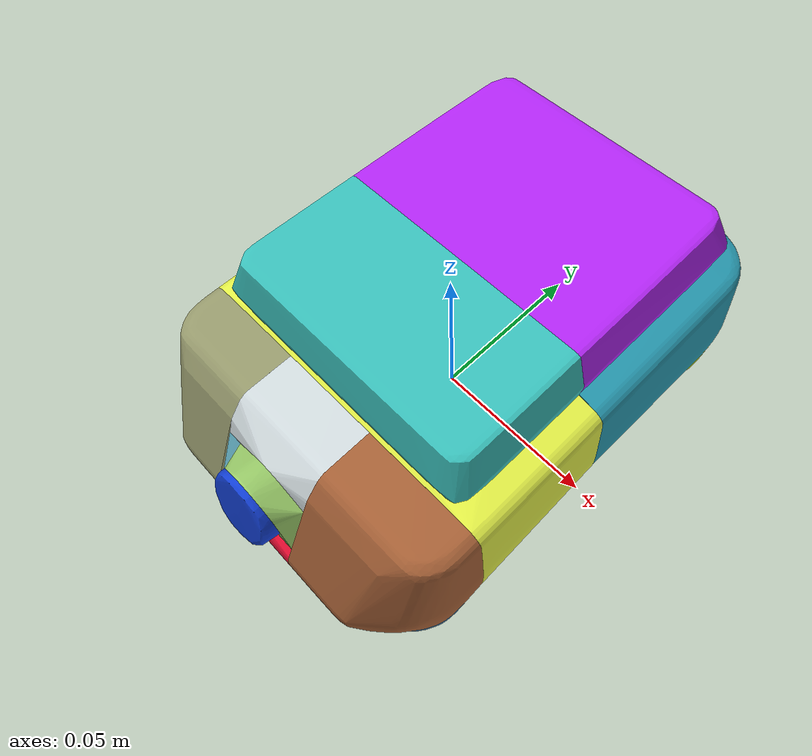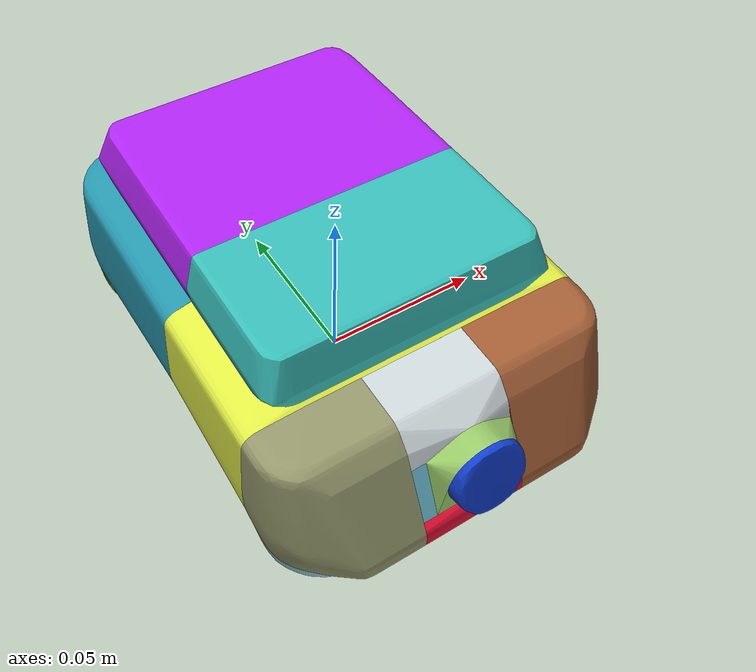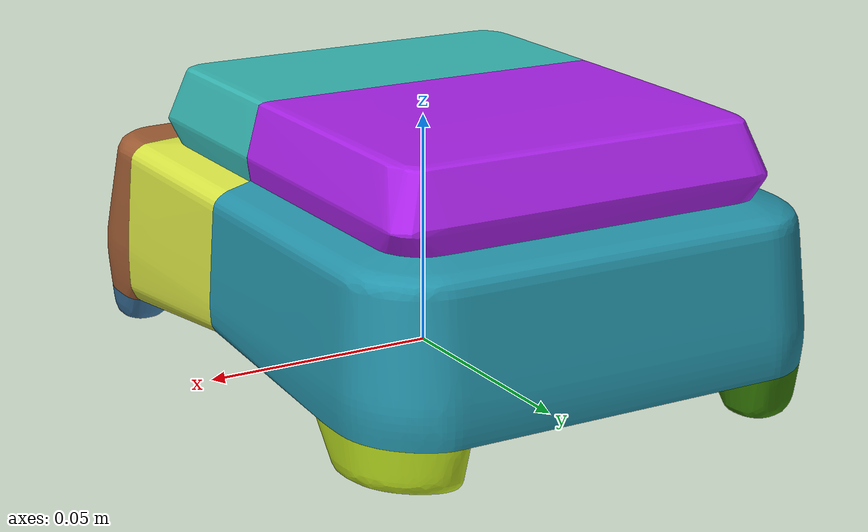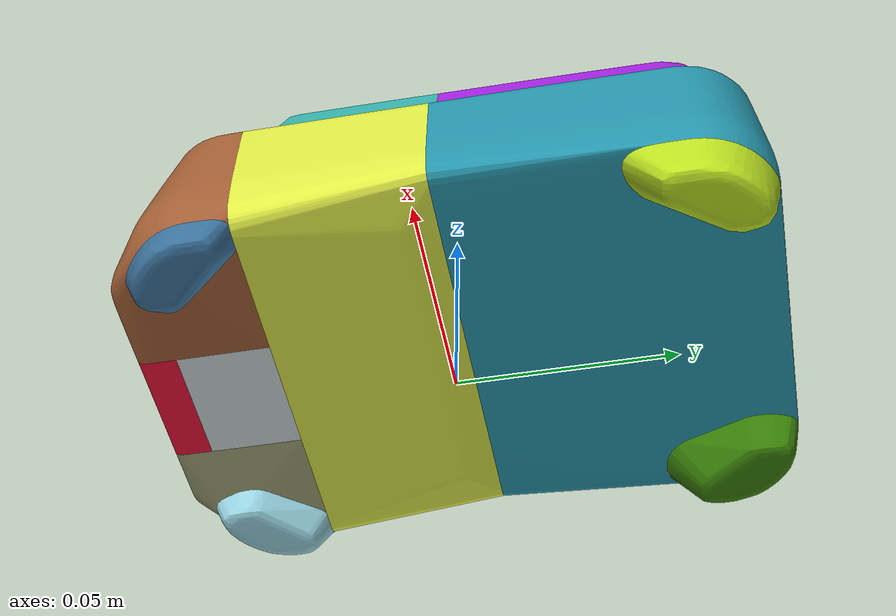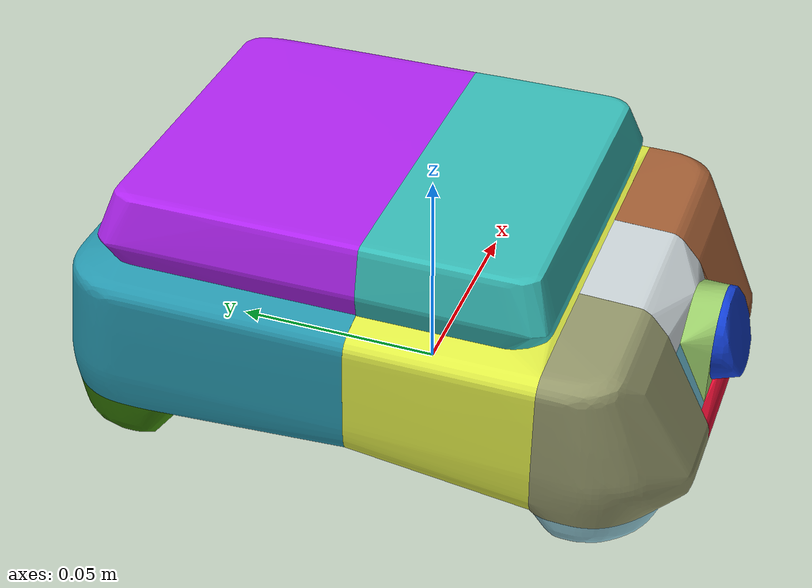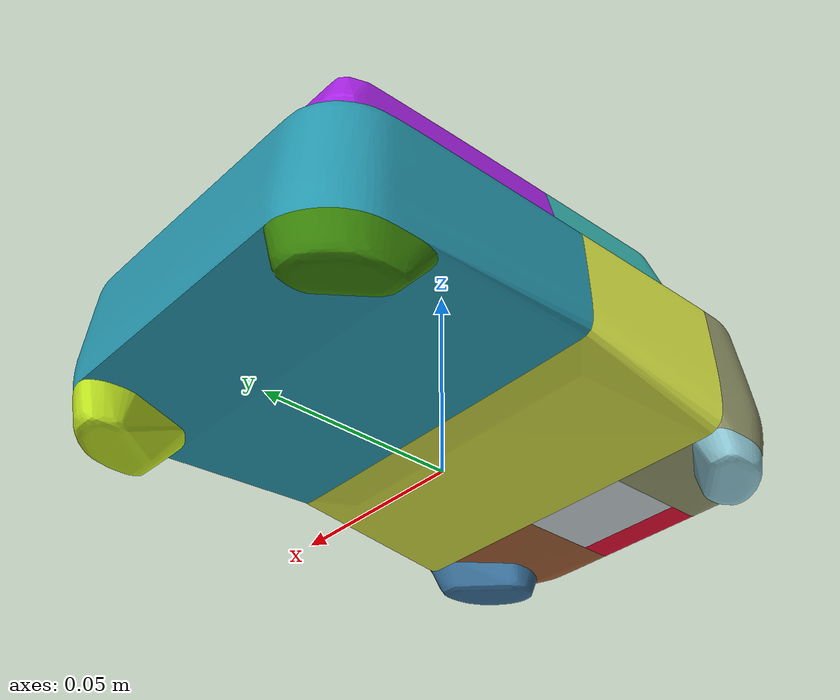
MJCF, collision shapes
<?xml version="1.0" ?>
<mujoco model="hot_plate">
  <asset>
    <texture type="2d" name="material_0" file="material_0.png"/>
    <material name="material_0" texture="material_0" specular="0.4000000000000001" shininess="0.001"/>
    <mesh file="hot_plate.obj" scale="0.07495989570619821 0.07495989570619821 0.07495989570619821"/>
    <mesh file="hot_plate/hot_plate_collision_0.obj" scale="0.07495989570619821 0.07495989570619821 0.07495989570619821"/>
    <mesh file="hot_plate/hot_plate_collision_1.obj" scale="0.07495989570619821 0.07495989570619821 0.07495989570619821"/>
    <mesh file="hot_plate/hot_plate_collision_2.obj" scale="0.07495989570619821 0.07495989570619821 0.07495989570619821"/>
    <mesh file="hot_plate/hot_plate_collision_3.obj" scale="0.07495989570619821 0.07495989570619821 0.07495989570619821"/>
    <mesh file="hot_plate/hot_plate_collision_4.obj" scale="0.07495989570619821 0.07495989570619821 0.07495989570619821"/>
    <mesh file="hot_plate/hot_plate_collision_5.obj" scale="0.07495989570619821 0.07495989570619821 0.07495989570619821"/>
    <mesh file="hot_plate/hot_plate_collision_6.obj" scale="0.07495989570619821 0.07495989570619821 0.07495989570619821"/>
    <mesh file="hot_plate/hot_plate_collision_7.obj" scale="0.07495989570619821 0.07495989570619821 0.07495989570619821"/>
    <mesh file="hot_plate/hot_plate_collision_8.obj" scale="0.07495989570619821 0.07495989570619821 0.07495989570619821"/>
    <mesh file="hot_plate/hot_plate_collision_9.obj" scale="0.07495989570619821 0.07495989570619821 0.07495989570619821"/>
    <mesh file="hot_plate/hot_plate_collision_10.obj" scale="0.07495989570619821 0.07495989570619821 0.07495989570619821"/>
    <mesh file="hot_plate/hot_plate_collision_11.obj" scale="0.07495989570619821 0.07495989570619821 0.07495989570619821"/>
    <mesh file="hot_plate/hot_plate_collision_12.obj" scale="0.07495989570619821 0.07495989570619821 0.07495989570619821"/>
    <mesh file="hot_plate/hot_plate_collision_13.obj" scale="0.07495989570619821 0.07495989570619821 0.07495989570619821"/>
    <mesh file="hot_plate/hot_plate_collision_14.obj" scale="0.07495989570619821 0.07495989570619821 0.07495989570619821"/>
  </asset>
  <worldbody>
    <body name="hot_plate">
      <inertial pos="0 0 0.028540" mass="0.02" diaginertia="0.0008 0.0008 0.0005"/>
      <geom material="material_0" mesh="hot_plate" class="visual"/>
      <geom mesh="hot_plate_collision_0" rgba="0.7326648351974515 0.875008323172983 0.12409686965649858 1" class="collision"/>
      <geom mesh="hot_plate_collision_1" rgba="0.21545815673018243 0.49227435206574854 0.02857385960172132 1" class="collision"/>
      <geom mesh="hot_plate_collision_2" rgba="0.21609861523375506 0.7337732363793704 0.7144462469761413 1" class="collision"/>
      <geom mesh="hot_plate_collision_3" rgba="0.6841081810181296 0.138369582915285 0.934049891721958 1" class="collision"/>
      <geom mesh="hot_plate_collision_4" rgba="0.8735717388005803 0.923044437508811 0.27138588104114136 1" class="collision"/>
      <geom mesh="hot_plate_collision_5" rgba="0.14621783521476828 0.5863522012418483 0.673274901195012 1" class="collision"/>
      <geom mesh="hot_plate_collision_6" rgba="0.5859761357455162 0.8175023512785704 0.8685093199426276 1" class="collision"/>
      <geom mesh="hot_plate_collision_7" rgba="0.5790360521442256 0.5920635601870291 0.4174130055726615 1" class="collision"/>
      <geom mesh="hot_plate_collision_8" rgba="0.22370095132653078 0.43897222277406767 0.6034862216924916 1" class="collision"/>
      <geom mesh="hot_plate_collision_9" rgba="0.8005043192322726 0.8367858704213763 0.8489400538386087 1" class="collision"/>
      <geom mesh="hot_plate_collision_10" rgba="0.6397127685939547 0.37180052148955667 0.20820387180803068 1" class="collision"/>
      <geom mesh="hot_plate_collision_11" rgba="0.9182886271625871 0.052001143802342664 0.2047889223361885 1" class="collision"/>
      <geom mesh="hot_plate_collision_12" rgba="0.4347026090889089 0.768474181223114 0.8557841213165294 1" class="collision"/>
      <geom mesh="hot_plate_collision_13" rgba="0.5980324100076143 0.7928350019659949 0.4072700126701717 1" class="collision"/>
      <geom mesh="hot_plate_collision_14" rgba="0.0679149413885658 0.2460461759273742 0.828784456913468 1" class="collision"/>
      <site class="grasppoint" pos="0.0000 0.0000 0.0342"/>
      <site class="grasppoint" pos="0.0000 0.0000 0.0457"/>
      <site class="grasppoint" pos="0.0000 0.0000 0.0542"/>
          <site class="keypoint" pos="-0.6737 -1.0001 0.0000"/>
      <site class="keypoint" pos="0.6727 1.0010 0.0000"/>
      <site class="keypoint" pos="-0.6737 1.0010 0.0000"/>
      <site class="keypoint" pos="0.6727 -1.0001 0.0000"/>
      <site class="placepoint" pos="-0.0005 0.0005 0.1005"/>
    <site name="top_site" pos="0 0 0.1" size="0.01" rgba="1 0 0 0"/>
    <site name="bottom_site" pos="0 0 0.0" size="0.01" rgba="0 1 0 0"/>
</body>
  </worldbody>
  <compiler boundmass="0.015" boundinertia="1e-05" angle="radian"/>
  <default>
    <default class="visual">
      <geom group="2" type="mesh" contype="0" conaffinity="0" density="50"/>
          <default class="keypoint"><site type="sphere" size="0.01" group="3" rgba="1 0 0 1"/></default>
      <default class="placepoint"><site type="sphere" size="0.01" group="2" rgba="0 0 1 0"/></default>
</default>
    <default class="collision">
      <geom group="3" type="mesh" density="50" friction="1.5 0.1 0.1" solimp="0.9 0.95 0.001" solref="0.02 1"/>
    </default>
    <default class="grasppoint">
      <site type="sphere" size="0.005" group="4" rgba="0 0 1 1"/>
    </default>
  </default>
</mujoco>
